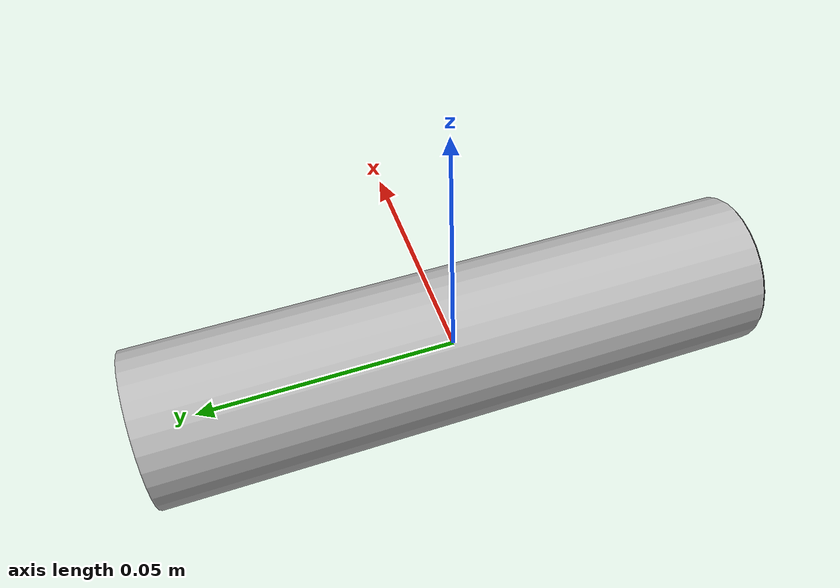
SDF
<?xml version="1.0"?>
<sdf version="1.5">
  <model name="battery_energizer">
    <static>false</static>

    <pose>0 0 0 0 0 0</pose>

    <link name="link">
      <pose>0 0 0 0 0 0</pose>

      <visual name="visual">
        <geometry>
          <mesh>
            <uri>model://battery_energizer/meshes/battery_energizer.dae</uri>
            <scale>0.015 0.06 0.015 </scale>
          </mesh>
        </geometry>
      </visual>

      <collision name="collision">
        <geometry>
          <mesh>
            <uri>model://battery_energizer/meshes/battery_varita.dae</uri>
            <scale>0.03 0.03 0.03</scale>
          </mesh>
        </geometry>
      </collision>

      <inertial>
        <mass>0.01</mass>
        <inertia>
          <ixx>0.000010052921019801413</ixx>
          <iyy>0.000002573134734131675</iyy>
          <izz>0.00001141102502635234</izz>
        </inertia>
      </inertial>
    </link>
  </model>
</sdf>
